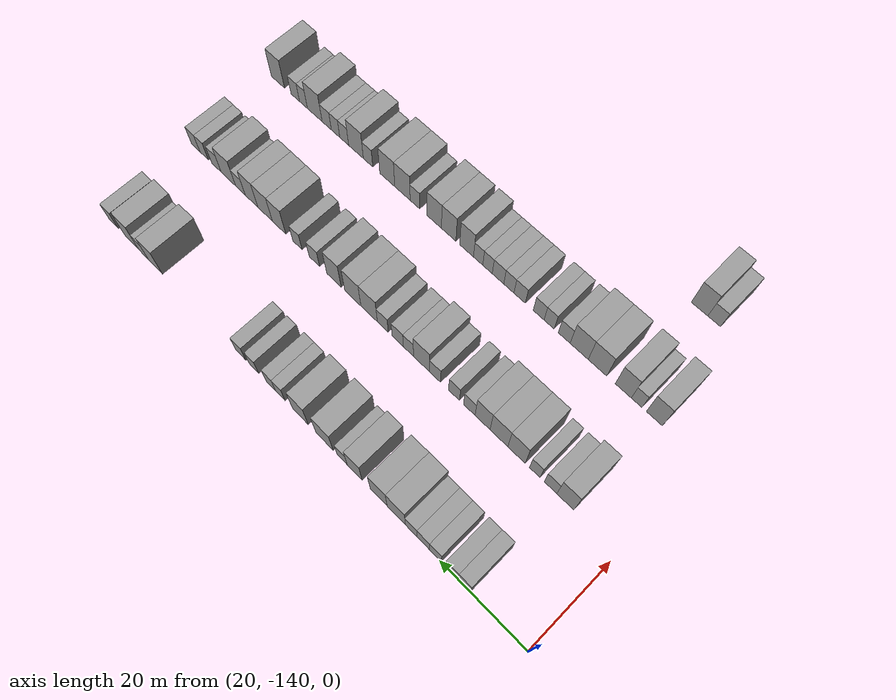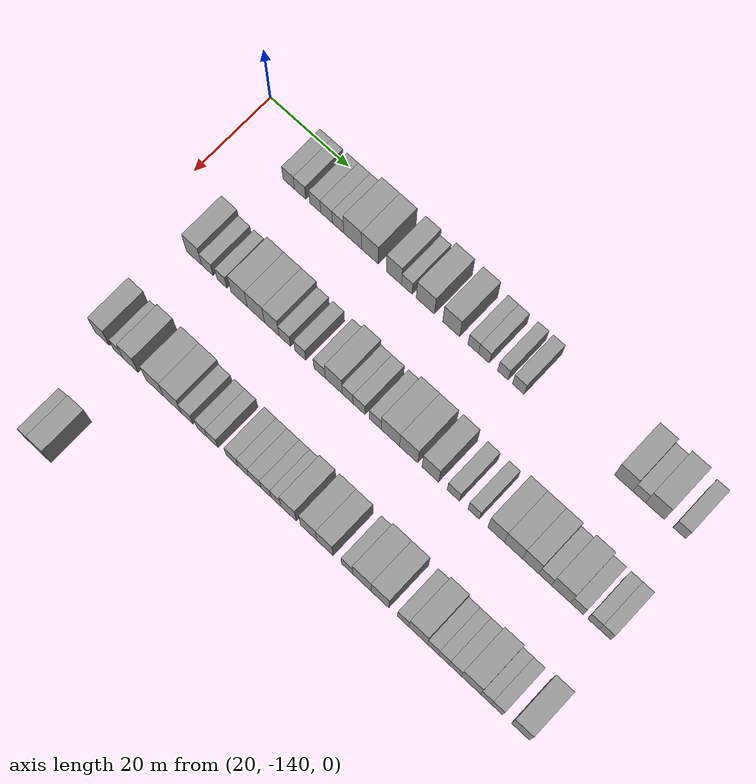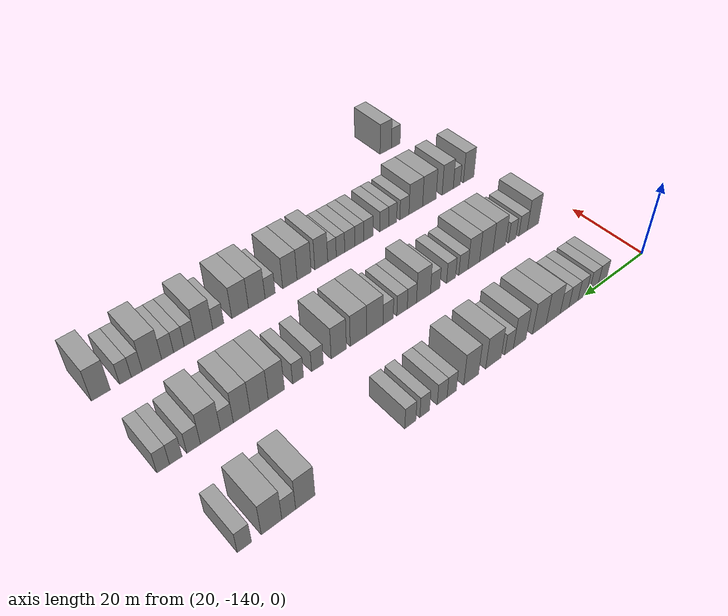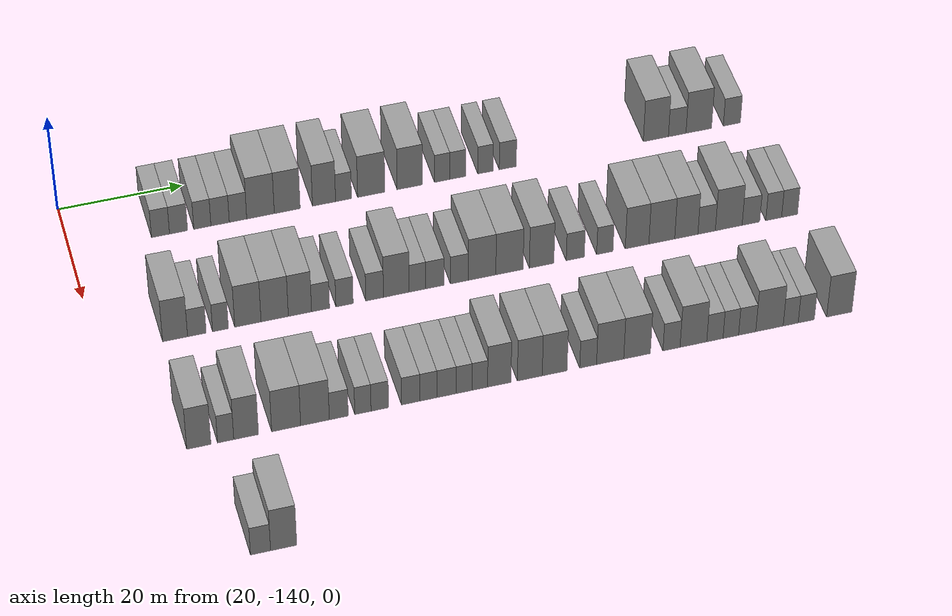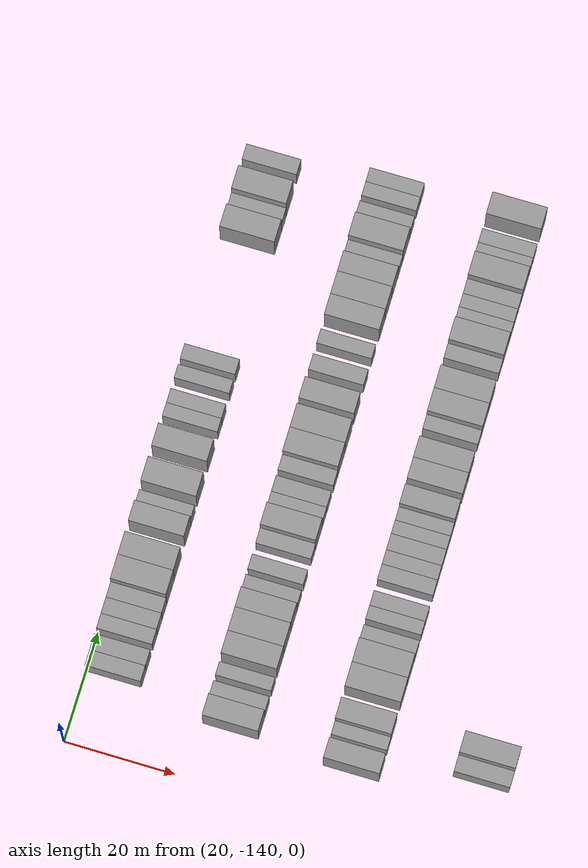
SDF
<sdf version="1.6">
 <world name="default">
  <model name="building_68">
   <static>1</static>
   <pose>25.0000 -125.6321 0 0.000000 0.000000 0.000000</pose>
   <link name="link">
    <pose>0 0 3.00 0 0 0</pose>
    <collision name="collision"><geometry><box><size>10.0000 2.8775 6.0000</size></box></geometry></collision>
    <visual name="visual">
     <cast_shadows>0</cast_shadows>
     <geometry><box><size>10.0000 2.8775 6.0000</size></box></geometry>
     <material>
      <script>
       <uri>model://grey_wall/materials/scripts</uri>
       <uri>model://grey_wall/materials/textures</uri>
       <name>vrc/grey_wall</name>
      </script>
     </material>
    </visual>
   </link>
  </model>
  <model name="building_69">
   <static>1</static>
   <pose>25.0000 -122.7486 0 0.000000 0.000000 0.000000</pose>
   <link name="link">
    <pose>0 0 3.00 0 0 0</pose>
    <collision name="collision"><geometry><box><size>10.0000 2.8895 6.0000</size></box></geometry></collision>
    <visual name="visual">
     <cast_shadows>0</cast_shadows>
     <geometry><box><size>10.0000 2.8895 6.0000</size></box></geometry>
     <material>
      <script>
       <uri>model://grey_wall/materials/scripts</uri>
       <uri>model://grey_wall/materials/textures</uri>
       <name>vrc/grey_wall</name>
      </script>
     </material>
    </visual>
   </link>
  </model>
  <model name="building_70">
   <static>1</static>
   <pose>25.0000 -118.9304 0 0.000000 0.000000 0.000000</pose>
   <link name="link">
    <pose>0 0 3.00 0 0 0</pose>
    <collision name="collision"><geometry><box><size>10.0000 2.7469 6.0000</size></box></geometry></collision>
    <visual name="visual">
     <cast_shadows>0</cast_shadows>
     <geometry><box><size>10.0000 2.7469 6.0000</size></box></geometry>
     <material>
      <script>
       <uri>model://grey_wall/materials/scripts</uri>
       <uri>model://grey_wall/materials/textures</uri>
       <name>vrc/grey_wall</name>
      </script>
     </material>
    </visual>
   </link>
  </model>
  <model name="building_71">
   <static>1</static>
   <pose>25.0000 -116.0844 0 0.000000 0.000000 0.000000</pose>
   <link name="link">
    <pose>0 0 3.00 0 0 0</pose>
    <collision name="collision"><geometry><box><size>10.0000 2.9451 6.0000</size></box></geometry></collision>
    <visual name="visual">
     <cast_shadows>0</cast_shadows>
     <geometry><box><size>10.0000 2.9451 6.0000</size></box></geometry>
     <material>
      <script>
       <uri>model://grey_wall/materials/scripts</uri>
       <uri>model://grey_wall/materials/textures</uri>
       <name>vrc/grey_wall</name>
      </script>
     </material>
    </visual>
   </link>
  </model>
  <model name="building_72">
   <static>1</static>
   <pose>25.0000 -113.2087 0 0.000000 0.000000 0.000000</pose>
   <link name="link">
    <pose>0 0 3.00 0 0 0</pose>
    <collision name="collision"><geometry><box><size>10.0000 2.8061 6.0000</size></box></geometry></collision>
    <visual name="visual">
     <cast_shadows>0</cast_shadows>
     <geometry><box><size>10.0000 2.8061 6.0000</size></box></geometry>
     <material>
      <script>
       <uri>model://grey_wall/materials/scripts</uri>
       <uri>model://grey_wall/materials/textures</uri>
       <name>vrc/grey_wall</name>
      </script>
     </material>
    </visual>
   </link>
  </model>
  <model name="building_73">
   <static>1</static>
   <pose>25.0000 -109.5785 0 0.000000 0.000000 0.000000</pose>
   <link name="link">
    <pose>0 0 4.50 0 0 0</pose>
    <collision name="collision"><geometry><box><size>10.0000 4.4544 9.0000</size></box></geometry></collision>
    <visual name="visual">
     <cast_shadows>0</cast_shadows>
     <geometry><box><size>10.0000 4.4544 9.0000</size></box></geometry>
     <material>
      <script>
       <uri>model://grey_wall/materials/scripts</uri>
       <uri>model://grey_wall/materials/textures</uri>
       <name>vrc/grey_wall</name>
      </script>
     </material>
    </visual>
   </link>
  </model>
  <model name="building_74">
   <static>1</static>
   <pose>25.0000 -105.2569 0 0.000000 0.000000 0.000000</pose>
   <link name="link">
    <pose>0 0 4.50 0 0 0</pose>
    <collision name="collision"><geometry><box><size>10.0000 4.1887 9.0000</size></box></geometry></collision>
    <visual name="visual">
     <cast_shadows>0</cast_shadows>
     <geometry><box><size>10.0000 4.1887 9.0000</size></box></geometry>
     <material>
      <script>
       <uri>model://grey_wall/materials/scripts</uri>
       <uri>model://grey_wall/materials/textures</uri>
       <name>vrc/grey_wall</name>
      </script>
     </material>
    </visual>
   </link>
  </model>
  <model name="building_75">
   <static>1</static>
   <pose>25.0000 -99.2882 0 0.000000 0.000000 0.000000</pose>
   <link name="link">
    <pose>0 0 4.50 0 0 0</pose>
    <collision name="collision"><geometry><box><size>10.0000 3.7487 9.0000</size></box></geometry></collision>
    <visual name="visual">
     <cast_shadows>0</cast_shadows>
     <geometry><box><size>10.0000 3.7487 9.0000</size></box></geometry>
     <material>
      <script>
       <uri>model://grey_wall/materials/scripts</uri>
       <uri>model://grey_wall/materials/textures</uri>
       <name>vrc/grey_wall</name>
      </script>
     </material>
    </visual>
   </link>
  </model>
  <model name="building_76">
   <static>1</static>
   <pose>25.0000 -96.1203 0 0.000000 0.000000 0.000000</pose>
   <link name="link">
    <pose>0 0 3.00 0 0 0</pose>
    <collision name="collision"><geometry><box><size>10.0000 2.5872 6.0000</size></box></geometry></collision>
    <visual name="visual">
     <cast_shadows>0</cast_shadows>
     <geometry><box><size>10.0000 2.5872 6.0000</size></box></geometry>
     <material>
      <script>
       <uri>model://grey_wall/materials/scripts</uri>
       <uri>model://grey_wall/materials/textures</uri>
       <name>vrc/grey_wall</name>
      </script>
     </material>
    </visual>
   </link>
  </model>
  <model name="building_77">
   <static>1</static>
   <pose>25.0000 -91.6001 0 0.000000 0.000000 0.000000</pose>
   <link name="link">
    <pose>0 0 4.50 0 0 0</pose>
    <collision name="collision"><geometry><box><size>10.0000 4.4531 9.0000</size></box></geometry></collision>
    <visual name="visual">
     <cast_shadows>0</cast_shadows>
     <geometry><box><size>10.0000 4.4531 9.0000</size></box></geometry>
     <material>
      <script>
       <uri>model://grey_wall/materials/scripts</uri>
       <uri>model://grey_wall/materials/textures</uri>
       <name>vrc/grey_wall</name>
      </script>
     </material>
    </visual>
   </link>
  </model>
  <model name="building_78">
   <static>1</static>
   <pose>25.0000 -85.3054 0 0.000000 0.000000 0.000000</pose>
   <link name="link">
    <pose>0 0 4.50 0 0 0</pose>
    <collision name="collision"><geometry><box><size>10.0000 4.1364 9.0000</size></box></geometry></collision>
    <visual name="visual">
     <cast_shadows>0</cast_shadows>
     <geometry><box><size>10.0000 4.1364 9.0000</size></box></geometry>
     <material>
      <script>
       <uri>model://grey_wall/materials/scripts</uri>
       <uri>model://grey_wall/materials/textures</uri>
       <name>vrc/grey_wall</name>
      </script>
     </material>
    </visual>
   </link>
  </model>
  <model name="building_79">
   <static>1</static>
   <pose>25.0000 -79.9799 0 0.000000 0.000000 0.000000</pose>
   <link name="link">
    <pose>0 0 3.00 0 0 0</pose>
    <collision name="collision"><geometry><box><size>10.0000 2.5144 6.0000</size></box></geometry></collision>
    <visual name="visual">
     <cast_shadows>0</cast_shadows>
     <geometry><box><size>10.0000 2.5144 6.0000</size></box></geometry>
     <material>
      <script>
       <uri>model://grey_wall/materials/scripts</uri>
       <uri>model://grey_wall/materials/textures</uri>
       <name>vrc/grey_wall</name>
      </script>
     </material>
    </visual>
   </link>
  </model>
  <model name="building_80">
   <static>1</static>
   <pose>25.0000 -77.4095 0 0.000000 0.000000 0.000000</pose>
   <link name="link">
    <pose>0 0 3.00 0 0 0</pose>
    <collision name="collision"><geometry><box><size>10.0000 2.6263 6.0000</size></box></geometry></collision>
    <visual name="visual">
     <cast_shadows>0</cast_shadows>
     <geometry><box><size>10.0000 2.6263 6.0000</size></box></geometry>
     <material>
      <script>
       <uri>model://grey_wall/materials/scripts</uri>
       <uri>model://grey_wall/materials/textures</uri>
       <name>vrc/grey_wall</name>
      </script>
     </material>
    </visual>
   </link>
  </model>
  <model name="building_81">
   <static>1</static>
   <pose>25.0000 -72.8299 0 0.000000 0.000000 0.000000</pose>
   <link name="link">
    <pose>0 0 3.00 0 0 0</pose>
    <collision name="collision"><geometry><box><size>10.0000 2.5330 6.0000</size></box></geometry></collision>
    <visual name="visual">
     <cast_shadows>0</cast_shadows>
     <geometry><box><size>10.0000 2.5330 6.0000</size></box></geometry>
     <material>
      <script>
       <uri>model://grey_wall/materials/scripts</uri>
       <uri>model://grey_wall/materials/textures</uri>
       <name>vrc/grey_wall</name>
      </script>
     </material>
    </visual>
   </link>
  </model>
  <model name="building_82">
   <static>1</static>
   <pose>25.0000 -69.1555 0 0.000000 0.000000 0.000000</pose>
   <link name="link">
    <pose>0 0 3.00 0 0 0</pose>
    <collision name="collision"><geometry><box><size>10.0000 2.8157 6.0000</size></box></geometry></collision>
    <visual name="visual">
     <cast_shadows>0</cast_shadows>
     <geometry><box><size>10.0000 2.8157 6.0000</size></box></geometry>
     <material>
      <script>
       <uri>model://grey_wall/materials/scripts</uri>
       <uri>model://grey_wall/materials/textures</uri>
       <name>vrc/grey_wall</name>
      </script>
     </material>
    </visual>
   </link>
  </model>
  <model name="building_83">
   <static>1</static>
   <pose>25.0000 -44.4096 0 0.000000 0.000000 0.000000</pose>
   <link name="link">
    <pose>0 0 4.50 0 0 0</pose>
    <collision name="collision"><geometry><box><size>10.0000 4.2254 9.0000</size></box></geometry></collision>
    <visual name="visual">
     <cast_shadows>0</cast_shadows>
     <geometry><box><size>10.0000 4.2254 9.0000</size></box></geometry>
     <material>
      <script>
       <uri>model://grey_wall/materials/scripts</uri>
       <uri>model://grey_wall/materials/textures</uri>
       <name>vrc/grey_wall</name>
      </script>
     </material>
    </visual>
   </link>
  </model>
  <model name="building_84">
   <static>1</static>
   <pose>25.0000 -40.8135 0 0.000000 0.000000 0.000000</pose>
   <link name="link">
    <pose>0 0 3.00 0 0 0</pose>
    <collision name="collision"><geometry><box><size>10.0000 2.9668 6.0000</size></box></geometry></collision>
    <visual name="visual">
     <cast_shadows>0</cast_shadows>
     <geometry><box><size>10.0000 2.9668 6.0000</size></box></geometry>
     <material>
      <script>
       <uri>model://grey_wall/materials/scripts</uri>
       <uri>model://grey_wall/materials/textures</uri>
       <name>vrc/grey_wall</name>
      </script>
     </material>
    </visual>
   </link>
  </model>
  <model name="building_85">
   <static>1</static>
   <pose>25.0000 -37.1729 0 0.000000 0.000000 0.000000</pose>
   <link name="link">
    <pose>0 0 4.50 0 0 0</pose>
    <collision name="collision"><geometry><box><size>10.0000 4.3143 9.0000</size></box></geometry></collision>
    <visual name="visual">
     <cast_shadows>0</cast_shadows>
     <geometry><box><size>10.0000 4.3143 9.0000</size></box></geometry>
     <material>
      <script>
       <uri>model://grey_wall/materials/scripts</uri>
       <uri>model://grey_wall/materials/textures</uri>
       <name>vrc/grey_wall</name>
      </script>
     </material>
    </visual>
   </link>
  </model>
  <model name="building_86">
   <static>1</static>
   <pose>25.0000 -31.5708 0 0.000000 0.000000 0.000000</pose>
   <link name="link">
    <pose>0 0 3.00 0 0 0</pose>
    <collision name="collision"><geometry><box><size>10.0000 2.8900 6.0000</size></box></geometry></collision>
    <visual name="visual">
     <cast_shadows>0</cast_shadows>
     <geometry><box><size>10.0000 2.8900 6.0000</size></box></geometry>
     <material>
      <script>
       <uri>model://grey_wall/materials/scripts</uri>
       <uri>model://grey_wall/materials/textures</uri>
       <name>vrc/grey_wall</name>
      </script>
     </material>
    </visual>
   </link>
  </model>
  <model name="building_234">
   <static>1</static>
   <pose>47.0000 -128.1214 0 0.000000 0.000000 0.000000</pose>
   <link name="link">
    <pose>0 0 4.50 0 0 0</pose>
    <collision name="collision"><geometry><box><size>10.0000 3.8833 9.0000</size></box></geometry></collision>
    <visual name="visual">
     <cast_shadows>0</cast_shadows>
     <geometry><box><size>10.0000 3.8833 9.0000</size></box></geometry>
     <material>
      <script>
       <uri>model://grey_wall/materials/scripts</uri>
       <uri>model://grey_wall/materials/textures</uri>
       <name>vrc/grey_wall</name>
      </script>
     </material>
    </visual>
   </link>
  </model>
  <model name="building_235">
   <static>1</static>
   <pose>47.0000 -124.7297 0 0.000000 0.000000 0.000000</pose>
   <link name="link">
    <pose>0 0 3.00 0 0 0</pose>
    <collision name="collision"><geometry><box><size>10.0000 2.9000 6.0000</size></box></geometry></collision>
    <visual name="visual">
     <cast_shadows>0</cast_shadows>
     <geometry><box><size>10.0000 2.9000 6.0000</size></box></geometry>
     <material>
      <script>
       <uri>model://grey_wall/materials/scripts</uri>
       <uri>model://grey_wall/materials/textures</uri>
       <name>vrc/grey_wall</name>
      </script>
     </material>
    </visual>
   </link>
  </model>
  <model name="building_236">
   <static>1</static>
   <pose>47.0000 -121.0456 0 0.000000 0.000000 0.000000</pose>
   <link name="link">
    <pose>0 0 3.00 0 0 0</pose>
    <collision name="collision"><geometry><box><size>10.0000 2.4681 6.0000</size></box></geometry></collision>
    <visual name="visual">
     <cast_shadows>0</cast_shadows>
     <geometry><box><size>10.0000 2.4681 6.0000</size></box></geometry>
     <material>
      <script>
       <uri>model://grey_wall/materials/scripts</uri>
       <uri>model://grey_wall/materials/textures</uri>
       <name>vrc/grey_wall</name>
      </script>
     </material>
    </visual>
   </link>
  </model>
  <model name="building_237">
   <static>1</static>
   <pose>47.0000 -116.7533 0 0.000000 0.000000 0.000000</pose>
   <link name="link">
    <pose>0 0 4.50 0 0 0</pose>
    <collision name="collision"><geometry><box><size>10.0000 4.1167 9.0000</size></box></geometry></collision>
    <visual name="visual">
     <cast_shadows>0</cast_shadows>
     <geometry><box><size>10.0000 4.1167 9.0000</size></box></geometry>
     <material>
      <script>
       <uri>model://grey_wall/materials/scripts</uri>
       <uri>model://grey_wall/materials/textures</uri>
       <name>vrc/grey_wall</name>
      </script>
     </material>
    </visual>
   </link>
  </model>
  <model name="building_238">
   <static>1</static>
   <pose>47.0000 -112.5541 0 0.000000 0.000000 0.000000</pose>
   <link name="link">
    <pose>0 0 4.50 0 0 0</pose>
    <collision name="collision"><geometry><box><size>10.0000 4.2816 9.0000</size></box></geometry></collision>
    <visual name="visual">
     <cast_shadows>0</cast_shadows>
     <geometry><box><size>10.0000 4.2816 9.0000</size></box></geometry>
     <material>
      <script>
       <uri>model://grey_wall/materials/scripts</uri>
       <uri>model://grey_wall/materials/textures</uri>
       <name>vrc/grey_wall</name>
      </script>
     </material>
    </visual>
   </link>
  </model>
  <model name="building_239">
   <static>1</static>
   <pose>47.0000 -108.5818 0 0.000000 0.000000 0.000000</pose>
   <link name="link">
    <pose>0 0 4.50 0 0 0</pose>
    <collision name="collision"><geometry><box><size>10.0000 3.6629 9.0000</size></box></geometry></collision>
    <visual name="visual">
     <cast_shadows>0</cast_shadows>
     <geometry><box><size>10.0000 3.6629 9.0000</size></box></geometry>
     <material>
      <script>
       <uri>model://grey_wall/materials/scripts</uri>
       <uri>model://grey_wall/materials/textures</uri>
       <name>vrc/grey_wall</name>
      </script>
     </material>
    </visual>
   </link>
  </model>
  <model name="building_240">
   <static>1</static>
   <pose>47.0000 -105.3297 0 0.000000 0.000000 0.000000</pose>
   <link name="link">
    <pose>0 0 3.00 0 0 0</pose>
    <collision name="collision"><geometry><box><size>10.0000 2.8414 6.0000</size></box></geometry></collision>
    <visual name="visual">
     <cast_shadows>0</cast_shadows>
     <geometry><box><size>10.0000 2.8414 6.0000</size></box></geometry>
     <material>
      <script>
       <uri>model://grey_wall/materials/scripts</uri>
       <uri>model://grey_wall/materials/textures</uri>
       <name>vrc/grey_wall</name>
      </script>
     </material>
    </visual>
   </link>
  </model>
  <model name="building_241">
   <static>1</static>
   <pose>47.0000 -101.5407 0 0.000000 0.000000 0.000000</pose>
   <link name="link">
    <pose>0 0 3.00 0 0 0</pose>
    <collision name="collision"><geometry><box><size>10.0000 2.7366 6.0000</size></box></geometry></collision>
    <visual name="visual">
     <cast_shadows>0</cast_shadows>
     <geometry><box><size>10.0000 2.7366 6.0000</size></box></geometry>
     <material>
      <script>
       <uri>model://grey_wall/materials/scripts</uri>
       <uri>model://grey_wall/materials/textures</uri>
       <name>vrc/grey_wall</name>
      </script>
     </material>
    </visual>
   </link>
  </model>
  <model name="building_242">
   <static>1</static>
   <pose>47.0000 -96.7659 0 0.000000 0.000000 0.000000</pose>
   <link name="link">
    <pose>0 0 3.00 0 0 0</pose>
    <collision name="collision"><geometry><box><size>10.0000 2.8129 6.0000</size></box></geometry></collision>
    <visual name="visual">
     <cast_shadows>0</cast_shadows>
     <geometry><box><size>10.0000 2.8129 6.0000</size></box></geometry>
     <material>
      <script>
       <uri>model://grey_wall/materials/scripts</uri>
       <uri>model://grey_wall/materials/textures</uri>
       <name>vrc/grey_wall</name>
      </script>
     </material>
    </visual>
   </link>
  </model>
  <model name="building_243">
   <static>1</static>
   <pose>47.0000 -93.3138 0 0.000000 0.000000 0.000000</pose>
   <link name="link">
    <pose>0 0 4.50 0 0 0</pose>
    <collision name="collision"><geometry><box><size>10.0000 4.0915 9.0000</size></box></geometry></collision>
    <visual name="visual">
     <cast_shadows>0</cast_shadows>
     <geometry><box><size>10.0000 4.0915 9.0000</size></box></geometry>
     <material>
      <script>
       <uri>model://grey_wall/materials/scripts</uri>
       <uri>model://grey_wall/materials/textures</uri>
       <name>vrc/grey_wall</name>
      </script>
     </material>
    </visual>
   </link>
  </model>
  <model name="building_244">
   <static>1</static>
   <pose>47.0000 -89.9505 0 0.000000 0.000000 0.000000</pose>
   <link name="link">
    <pose>0 0 3.00 0 0 0</pose>
    <collision name="collision"><geometry><box><size>10.0000 2.6350 6.0000</size></box></geometry></collision>
    <visual name="visual">
     <cast_shadows>0</cast_shadows>
     <geometry><box><size>10.0000 2.6350 6.0000</size></box></geometry>
     <material>
      <script>
       <uri>model://grey_wall/materials/scripts</uri>
       <uri>model://grey_wall/materials/textures</uri>
       <name>vrc/grey_wall</name>
      </script>
     </material>
    </visual>
   </link>
  </model>
  <model name="building_245">
   <static>1</static>
   <pose>47.0000 -87.1586 0 0.000000 0.000000 0.000000</pose>
   <link name="link">
    <pose>0 0 3.00 0 0 0</pose>
    <collision name="collision"><geometry><box><size>10.0000 2.9489 6.0000</size></box></geometry></collision>
    <visual name="visual">
     <cast_shadows>0</cast_shadows>
     <geometry><box><size>10.0000 2.9489 6.0000</size></box></geometry>
     <material>
      <script>
       <uri>model://grey_wall/materials/scripts</uri>
       <uri>model://grey_wall/materials/textures</uri>
       <name>vrc/grey_wall</name>
      </script>
     </material>
    </visual>
   </link>
  </model>
  <model name="building_246">
   <static>1</static>
   <pose>47.0000 -83.2494 0 0.000000 0.000000 0.000000</pose>
   <link name="link">
    <pose>0 0 3.00 0 0 0</pose>
    <collision name="collision"><geometry><box><size>10.0000 2.8693 6.0000</size></box></geometry></collision>
    <visual name="visual">
     <cast_shadows>0</cast_shadows>
     <geometry><box><size>10.0000 2.8693 6.0000</size></box></geometry>
     <material>
      <script>
       <uri>model://grey_wall/materials/scripts</uri>
       <uri>model://grey_wall/materials/textures</uri>
       <name>vrc/grey_wall</name>
      </script>
     </material>
    </visual>
   </link>
  </model>
  <model name="building_247">
   <static>1</static>
   <pose>47.0000 -79.6062 0 0.000000 0.000000 0.000000</pose>
   <link name="link">
    <pose>0 0 4.50 0 0 0</pose>
    <collision name="collision"><geometry><box><size>10.0000 4.4171 9.0000</size></box></geometry></collision>
    <visual name="visual">
     <cast_shadows>0</cast_shadows>
     <geometry><box><size>10.0000 4.4171 9.0000</size></box></geometry>
     <material>
      <script>
       <uri>model://grey_wall/materials/scripts</uri>
       <uri>model://grey_wall/materials/textures</uri>
       <name>vrc/grey_wall</name>
      </script>
     </material>
    </visual>
   </link>
  </model>
  <model name="building_248">
   <static>1</static>
   <pose>47.0000 -75.2029 0 0.000000 0.000000 0.000000</pose>
   <link name="link">
    <pose>0 0 4.50 0 0 0</pose>
    <collision name="collision"><geometry><box><size>10.0000 4.3895 9.0000</size></box></geometry></collision>
    <visual name="visual">
     <cast_shadows>0</cast_shadows>
     <geometry><box><size>10.0000 4.3895 9.0000</size></box></geometry>
     <material>
      <script>
       <uri>model://grey_wall/materials/scripts</uri>
       <uri>model://grey_wall/materials/textures</uri>
       <name>vrc/grey_wall</name>
      </script>
     </material>
    </visual>
   </link>
  </model>
  <model name="building_249">
   <static>1</static>
   <pose>47.0000 -70.0247 0 0.000000 0.000000 0.000000</pose>
   <link name="link">
    <pose>0 0 4.50 0 0 0</pose>
    <collision name="collision"><geometry><box><size>10.0000 3.9669 9.0000</size></box></geometry></collision>
    <visual name="visual">
     <cast_shadows>0</cast_shadows>
     <geometry><box><size>10.0000 3.9669 9.0000</size></box></geometry>
     <material>
      <script>
       <uri>model://grey_wall/materials/scripts</uri>
       <uri>model://grey_wall/materials/textures</uri>
       <name>vrc/grey_wall</name>
      </script>
     </material>
    </visual>
   </link>
  </model>
  <model name="building_250">
   <static>1</static>
   <pose>47.0000 -64.5692 0 0.000000 0.000000 0.000000</pose>
   <link name="link">
    <pose>0 0 3.00 0 0 0</pose>
    <collision name="collision"><geometry><box><size>10.0000 2.9443 6.0000</size></box></geometry></collision>
    <visual name="visual">
     <cast_shadows>0</cast_shadows>
     <geometry><box><size>10.0000 2.9443 6.0000</size></box></geometry>
     <material>
      <script>
       <uri>model://grey_wall/materials/scripts</uri>
       <uri>model://grey_wall/materials/textures</uri>
       <name>vrc/grey_wall</name>
      </script>
     </material>
    </visual>
   </link>
  </model>
  <model name="building_251">
   <static>1</static>
   <pose>47.0000 -59.7716 0 0.000000 0.000000 0.000000</pose>
   <link name="link">
    <pose>0 0 3.00 0 0 0</pose>
    <collision name="collision"><geometry><box><size>10.0000 2.6509 6.0000</size></box></geometry></collision>
    <visual name="visual">
     <cast_shadows>0</cast_shadows>
     <geometry><box><size>10.0000 2.6509 6.0000</size></box></geometry>
     <material>
      <script>
       <uri>model://grey_wall/materials/scripts</uri>
       <uri>model://grey_wall/materials/textures</uri>
       <name>vrc/grey_wall</name>
      </script>
     </material>
    </visual>
   </link>
  </model>
  <model name="building_252">
   <static>1</static>
   <pose>47.0000 -54.5122 0 0.000000 0.000000 0.000000</pose>
   <link name="link">
    <pose>0 0 4.50 0 0 0</pose>
    <collision name="collision"><geometry><box><size>10.0000 3.8678 9.0000</size></box></geometry></collision>
    <visual name="visual">
     <cast_shadows>0</cast_shadows>
     <geometry><box><size>10.0000 3.8678 9.0000</size></box></geometry>
     <material>
      <script>
       <uri>model://grey_wall/materials/scripts</uri>
       <uri>model://grey_wall/materials/textures</uri>
       <name>vrc/grey_wall</name>
      </script>
     </material>
    </visual>
   </link>
  </model>
  <model name="building_253">
   <static>1</static>
   <pose>47.0000 -50.4630 0 0.000000 0.000000 0.000000</pose>
   <link name="link">
    <pose>0 0 4.50 0 0 0</pose>
    <collision name="collision"><geometry><box><size>10.0000 4.2305 9.0000</size></box></geometry></collision>
    <visual name="visual">
     <cast_shadows>0</cast_shadows>
     <geometry><box><size>10.0000 4.2305 9.0000</size></box></geometry>
     <material>
      <script>
       <uri>model://grey_wall/materials/scripts</uri>
       <uri>model://grey_wall/materials/textures</uri>
       <name>vrc/grey_wall</name>
      </script>
     </material>
    </visual>
   </link>
  </model>
  <model name="building_254">
   <static>1</static>
   <pose>47.0000 -46.4441 0 0.000000 0.000000 0.000000</pose>
   <link name="link">
    <pose>0 0 4.50 0 0 0</pose>
    <collision name="collision"><geometry><box><size>10.0000 3.8074 9.0000</size></box></geometry></collision>
    <visual name="visual">
     <cast_shadows>0</cast_shadows>
     <geometry><box><size>10.0000 3.8074 9.0000</size></box></geometry>
     <material>
      <script>
       <uri>model://grey_wall/materials/scripts</uri>
       <uri>model://grey_wall/materials/textures</uri>
       <name>vrc/grey_wall</name>
      </script>
     </material>
    </visual>
   </link>
  </model>
  <model name="building_255">
   <static>1</static>
   <pose>47.0000 -43.1055 0 0.000000 0.000000 0.000000</pose>
   <link name="link">
    <pose>0 0 3.00 0 0 0</pose>
    <collision name="collision"><geometry><box><size>10.0000 2.8697 6.0000</size></box></geometry></collision>
    <visual name="visual">
     <cast_shadows>0</cast_shadows>
     <geometry><box><size>10.0000 2.8697 6.0000</size></box></geometry>
     <material>
      <script>
       <uri>model://grey_wall/materials/scripts</uri>
       <uri>model://grey_wall/materials/textures</uri>
       <name>vrc/grey_wall</name>
      </script>
     </material>
    </visual>
   </link>
  </model>
  <model name="building_256">
   <static>1</static>
   <pose>47.0000 -39.4622 0 0.000000 0.000000 0.000000</pose>
   <link name="link">
    <pose>0 0 4.50 0 0 0</pose>
    <collision name="collision"><geometry><box><size>10.0000 4.4170 9.0000</size></box></geometry></collision>
    <visual name="visual">
     <cast_shadows>0</cast_shadows>
     <geometry><box><size>10.0000 4.4170 9.0000</size></box></geometry>
     <material>
      <script>
       <uri>model://grey_wall/materials/scripts</uri>
       <uri>model://grey_wall/materials/textures</uri>
       <name>vrc/grey_wall</name>
      </script>
     </material>
    </visual>
   </link>
  </model>
  <model name="building_257">
   <static>1</static>
   <pose>47.0000 -35.7966 0 0.000000 0.000000 0.000000</pose>
   <link name="link">
    <pose>0 0 3.00 0 0 0</pose>
    <collision name="collision"><geometry><box><size>10.0000 2.9141 6.0000</size></box></geometry></collision>
    <visual name="visual">
     <cast_shadows>0</cast_shadows>
     <geometry><box><size>10.0000 2.9141 6.0000</size></box></geometry>
     <material>
      <script>
       <uri>model://grey_wall/materials/scripts</uri>
       <uri>model://grey_wall/materials/textures</uri>
       <name>vrc/grey_wall</name>
      </script>
     </material>
    </visual>
   </link>
  </model>
  <model name="building_258">
   <static>1</static>
   <pose>47.0000 -32.0243 0 0.000000 0.000000 0.000000</pose>
   <link name="link">
    <pose>0 0 3.00 0 0 0</pose>
    <collision name="collision"><geometry><box><size>10.0000 2.6305 6.0000</size></box></geometry></collision>
    <visual name="visual">
     <cast_shadows>0</cast_shadows>
     <geometry><box><size>10.0000 2.6305 6.0000</size></box></geometry>
     <material>
      <script>
       <uri>model://grey_wall/materials/scripts</uri>
       <uri>model://grey_wall/materials/textures</uri>
       <name>vrc/grey_wall</name>
      </script>
     </material>
    </visual>
   </link>
  </model>
  <model name="building_259">
   <static>1</static>
   <pose>47.0000 -29.3949 0 0.000000 0.000000 0.000000</pose>
   <link name="link">
    <pose>0 0 3.00 0 0 0</pose>
    <collision name="collision"><geometry><box><size>10.0000 2.6283 6.0000</size></box></geometry></collision>
    <visual name="visual">
     <cast_shadows>0</cast_shadows>
     <geometry><box><size>10.0000 2.6283 6.0000</size></box></geometry>
     <material>
      <script>
       <uri>model://grey_wall/materials/scripts</uri>
       <uri>model://grey_wall/materials/textures</uri>
       <name>vrc/grey_wall</name>
      </script>
     </material>
    </visual>
   </link>
  </model>
  <model name="building_425">
   <static>1</static>
   <pose>69.0000 -129.3531 0 0.000000 0.000000 0.000000</pose>
   <link name="link">
    <pose>0 0 4.50 0 0 0</pose>
    <collision name="collision"><geometry><box><size>10.0000 3.6675 9.0000</size></box></geometry></collision>
    <visual name="visual">
     <cast_shadows>0</cast_shadows>
     <geometry><box><size>10.0000 3.6675 9.0000</size></box></geometry>
     <material>
      <script>
       <uri>model://grey_wall/materials/scripts</uri>
       <uri>model://grey_wall/materials/textures</uri>
       <name>vrc/grey_wall</name>
      </script>
     </material>
    </visual>
   </link>
  </model>
  <model name="building_426">
   <static>1</static>
   <pose>69.0000 -125.2869 0 0.000000 0.000000 0.000000</pose>
   <link name="link">
    <pose>0 0 3.00 0 0 0</pose>
    <collision name="collision"><geometry><box><size>10.0000 2.4648 6.0000</size></box></geometry></collision>
    <visual name="visual">
     <cast_shadows>0</cast_shadows>
     <geometry><box><size>10.0000 2.4648 6.0000</size></box></geometry>
     <material>
      <script>
       <uri>model://grey_wall/materials/scripts</uri>
       <uri>model://grey_wall/materials/textures</uri>
       <name>vrc/grey_wall</name>
      </script>
     </material>
    </visual>
   </link>
  </model>
  <model name="building_427">
   <static>1</static>
   <pose>69.0000 -122.1708 0 0.000000 0.000000 0.000000</pose>
   <link name="link">
    <pose>0 0 4.50 0 0 0</pose>
    <collision name="collision"><geometry><box><size>10.0000 3.7676 9.0000</size></box></geometry></collision>
    <visual name="visual">
     <cast_shadows>0</cast_shadows>
     <geometry><box><size>10.0000 3.7676 9.0000</size></box></geometry>
     <material>
      <script>
       <uri>model://grey_wall/materials/scripts</uri>
       <uri>model://grey_wall/materials/textures</uri>
       <name>vrc/grey_wall</name>
      </script>
     </material>
    </visual>
   </link>
  </model>
  <model name="building_428">
   <static>1</static>
   <pose>69.0000 -116.0687 0 0.000000 0.000000 0.000000</pose>
   <link name="link">
    <pose>0 0 4.50 0 0 0</pose>
    <collision name="collision"><geometry><box><size>10.0000 4.4365 9.0000</size></box></geometry></collision>
    <visual name="visual">
     <cast_shadows>0</cast_shadows>
     <geometry><box><size>10.0000 4.4365 9.0000</size></box></geometry>
     <material>
      <script>
       <uri>model://grey_wall/materials/scripts</uri>
       <uri>model://grey_wall/materials/textures</uri>
       <name>vrc/grey_wall</name>
      </script>
     </material>
    </visual>
   </link>
  </model>
  <model name="building_429">
   <static>1</static>
   <pose>69.0000 -111.6551 0 0.000000 0.000000 0.000000</pose>
   <link name="link">
    <pose>0 0 4.50 0 0 0</pose>
    <collision name="collision"><geometry><box><size>10.0000 4.3907 9.0000</size></box></geometry></collision>
    <visual name="visual">
     <cast_shadows>0</cast_shadows>
     <geometry><box><size>10.0000 4.3907 9.0000</size></box></geometry>
     <material>
      <script>
       <uri>model://grey_wall/materials/scripts</uri>
       <uri>model://grey_wall/materials/textures</uri>
       <name>vrc/grey_wall</name>
      </script>
     </material>
    </visual>
   </link>
  </model>
  <model name="building_430">
   <static>1</static>
   <pose>69.0000 -108.0057 0 0.000000 0.000000 0.000000</pose>
   <link name="link">
    <pose>0 0 3.00 0 0 0</pose>
    <collision name="collision"><geometry><box><size>10.0000 2.9081 6.0000</size></box></geometry></collision>
    <visual name="visual">
     <cast_shadows>0</cast_shadows>
     <geometry><box><size>10.0000 2.9081 6.0000</size></box></geometry>
     <material>
      <script>
       <uri>model://grey_wall/materials/scripts</uri>
       <uri>model://grey_wall/materials/textures</uri>
       <name>vrc/grey_wall</name>
      </script>
     </material>
    </visual>
   </link>
  </model>
  <model name="building_431">
   <static>1</static>
   <pose>69.0000 -104.2964 0 0.000000 0.000000 0.000000</pose>
   <link name="link">
    <pose>0 0 3.00 0 0 0</pose>
    <collision name="collision"><geometry><box><size>10.0000 2.5105 6.0000</size></box></geometry></collision>
    <visual name="visual">
     <cast_shadows>0</cast_shadows>
     <geometry><box><size>10.0000 2.5105 6.0000</size></box></geometry>
     <material>
      <script>
       <uri>model://grey_wall/materials/scripts</uri>
       <uri>model://grey_wall/materials/textures</uri>
       <name>vrc/grey_wall</name>
      </script>
     </material>
    </visual>
   </link>
  </model>
  <model name="building_432">
   <static>1</static>
   <pose>69.0000 -101.6892 0 0.000000 0.000000 0.000000</pose>
   <link name="link">
    <pose>0 0 3.00 0 0 0</pose>
    <collision name="collision"><geometry><box><size>10.0000 2.7039 6.0000</size></box></geometry></collision>
    <visual name="visual">
     <cast_shadows>0</cast_shadows>
     <geometry><box><size>10.0000 2.7039 6.0000</size></box></geometry>
     <material>
      <script>
       <uri>model://grey_wall/materials/scripts</uri>
       <uri>model://grey_wall/materials/textures</uri>
       <name>vrc/grey_wall</name>
      </script>
     </material>
    </visual>
   </link>
  </model>
  <model name="building_433">
   <static>1</static>
   <pose>69.0000 -96.9033 0 0.000000 0.000000 0.000000</pose>
   <link name="link">
    <pose>0 0 3.00 0 0 0</pose>
    <collision name="collision"><geometry><box><size>10.0000 2.8678 6.0000</size></box></geometry></collision>
    <visual name="visual">
     <cast_shadows>0</cast_shadows>
     <geometry><box><size>10.0000 2.8678 6.0000</size></box></geometry>
     <material>
      <script>
       <uri>model://grey_wall/materials/scripts</uri>
       <uri>model://grey_wall/materials/textures</uri>
       <name>vrc/grey_wall</name>
      </script>
     </material>
    </visual>
   </link>
  </model>
  <model name="building_434">
   <static>1</static>
   <pose>69.0000 -94.1615 0 0.000000 0.000000 0.000000</pose>
   <link name="link">
    <pose>0 0 3.00 0 0 0</pose>
    <collision name="collision"><geometry><box><size>10.0000 2.6158 6.0000</size></box></geometry></collision>
    <visual name="visual">
     <cast_shadows>0</cast_shadows>
     <geometry><box><size>10.0000 2.6158 6.0000</size></box></geometry>
     <material>
      <script>
       <uri>model://grey_wall/materials/scripts</uri>
       <uri>model://grey_wall/materials/textures</uri>
       <name>vrc/grey_wall</name>
      </script>
     </material>
    </visual>
   </link>
  </model>
  <model name="building_435">
   <static>1</static>
   <pose>69.0000 -91.3620 0 0.000000 0.000000 0.000000</pose>
   <link name="link">
    <pose>0 0 3.00 0 0 0</pose>
    <collision name="collision"><geometry><box><size>10.0000 2.9832 6.0000</size></box></geometry></collision>
    <visual name="visual">
     <cast_shadows>0</cast_shadows>
     <geometry><box><size>10.0000 2.9832 6.0000</size></box></geometry>
     <material>
      <script>
       <uri>model://grey_wall/materials/scripts</uri>
       <uri>model://grey_wall/materials/textures</uri>
       <name>vrc/grey_wall</name>
      </script>
     </material>
    </visual>
   </link>
  </model>
  <model name="building_436">
   <static>1</static>
   <pose>69.0000 -88.6391 0 0.000000 0.000000 0.000000</pose>
   <link name="link">
    <pose>0 0 3.00 0 0 0</pose>
    <collision name="collision"><geometry><box><size>10.0000 2.4626 6.0000</size></box></geometry></collision>
    <visual name="visual">
     <cast_shadows>0</cast_shadows>
     <geometry><box><size>10.0000 2.4626 6.0000</size></box></geometry>
     <material>
      <script>
       <uri>model://grey_wall/materials/scripts</uri>
       <uri>model://grey_wall/materials/textures</uri>
       <name>vrc/grey_wall</name>
      </script>
     </material>
    </visual>
   </link>
  </model>
  <model name="building_437">
   <static>1</static>
   <pose>69.0000 -86.1884 0 0.000000 0.000000 0.000000</pose>
   <link name="link">
    <pose>0 0 3.00 0 0 0</pose>
    <collision name="collision"><geometry><box><size>10.0000 2.4389 6.0000</size></box></geometry></collision>
    <visual name="visual">
     <cast_shadows>0</cast_shadows>
     <geometry><box><size>10.0000 2.4389 6.0000</size></box></geometry>
     <material>
      <script>
       <uri>model://grey_wall/materials/scripts</uri>
       <uri>model://grey_wall/materials/textures</uri>
       <name>vrc/grey_wall</name>
      </script>
     </material>
    </visual>
   </link>
  </model>
  <model name="building_438">
   <static>1</static>
   <pose>69.0000 -83.1420 0 0.000000 0.000000 0.000000</pose>
   <link name="link">
    <pose>0 0 4.50 0 0 0</pose>
    <collision name="collision"><geometry><box><size>10.0000 3.6538 9.0000</size></box></geometry></collision>
    <visual name="visual">
     <cast_shadows>0</cast_shadows>
     <geometry><box><size>10.0000 3.6538 9.0000</size></box></geometry>
     <material>
      <script>
       <uri>model://grey_wall/materials/scripts</uri>
       <uri>model://grey_wall/materials/textures</uri>
       <name>vrc/grey_wall</name>
      </script>
     </material>
    </visual>
   </link>
  </model>
  <model name="building_439">
   <static>1</static>
   <pose>69.0000 -78.3642 0 0.000000 0.000000 0.000000</pose>
   <link name="link">
    <pose>0 0 4.50 0 0 0</pose>
    <collision name="collision"><geometry><box><size>10.0000 3.9019 9.0000</size></box></geometry></collision>
    <visual name="visual">
     <cast_shadows>0</cast_shadows>
     <geometry><box><size>10.0000 3.9019 9.0000</size></box></geometry>
     <material>
      <script>
       <uri>model://grey_wall/materials/scripts</uri>
       <uri>model://grey_wall/materials/textures</uri>
       <name>vrc/grey_wall</name>
      </script>
     </material>
    </visual>
   </link>
  </model>
  <model name="building_440">
   <static>1</static>
   <pose>69.0000 -74.4642 0 0.000000 0.000000 0.000000</pose>
   <link name="link">
    <pose>0 0 4.50 0 0 0</pose>
    <collision name="collision"><geometry><box><size>10.0000 3.8980 9.0000</size></box></geometry></collision>
    <visual name="visual">
     <cast_shadows>0</cast_shadows>
     <geometry><box><size>10.0000 3.8980 9.0000</size></box></geometry>
     <material>
      <script>
       <uri>model://grey_wall/materials/scripts</uri>
       <uri>model://grey_wall/materials/textures</uri>
       <name>vrc/grey_wall</name>
      </script>
     </material>
    </visual>
   </link>
  </model>
  <model name="building_441">
   <static>1</static>
   <pose>69.0000 -69.1876 0 0.000000 0.000000 0.000000</pose>
   <link name="link">
    <pose>0 0 3.00 0 0 0</pose>
    <collision name="collision"><geometry><box><size>10.0000 2.6553 6.0000</size></box></geometry></collision>
    <visual name="visual">
     <cast_shadows>0</cast_shadows>
     <geometry><box><size>10.0000 2.6553 6.0000</size></box></geometry>
     <material>
      <script>
       <uri>model://grey_wall/materials/scripts</uri>
       <uri>model://grey_wall/materials/textures</uri>
       <name>vrc/grey_wall</name>
      </script>
     </material>
    </visual>
   </link>
  </model>
  <model name="building_442">
   <static>1</static>
   <pose>69.0000 -65.7091 0 0.000000 0.000000 0.000000</pose>
   <link name="link">
    <pose>0 0 4.50 0 0 0</pose>
    <collision name="collision"><geometry><box><size>10.0000 4.3017 9.0000</size></box></geometry></collision>
    <visual name="visual">
     <cast_shadows>0</cast_shadows>
     <geometry><box><size>10.0000 4.3017 9.0000</size></box></geometry>
     <material>
      <script>
       <uri>model://grey_wall/materials/scripts</uri>
       <uri>model://grey_wall/materials/textures</uri>
       <name>vrc/grey_wall</name>
      </script>
     </material>
    </visual>
   </link>
  </model>
  <model name="building_443">
   <static>1</static>
   <pose>69.0000 -61.4460 0 0.000000 0.000000 0.000000</pose>
   <link name="link">
    <pose>0 0 4.50 0 0 0</pose>
    <collision name="collision"><geometry><box><size>10.0000 4.2245 9.0000</size></box></geometry></collision>
    <visual name="visual">
     <cast_shadows>0</cast_shadows>
     <geometry><box><size>10.0000 4.2245 9.0000</size></box></geometry>
     <material>
      <script>
       <uri>model://grey_wall/materials/scripts</uri>
       <uri>model://grey_wall/materials/textures</uri>
       <name>vrc/grey_wall</name>
      </script>
     </material>
    </visual>
   </link>
  </model>
  <model name="building_444">
   <static>1</static>
   <pose>69.0000 -55.9717 0 0.000000 0.000000 0.000000</pose>
   <link name="link">
    <pose>0 0 3.00 0 0 0</pose>
    <collision name="collision"><geometry><box><size>10.0000 2.7242 6.0000</size></box></geometry></collision>
    <visual name="visual">
     <cast_shadows>0</cast_shadows>
     <geometry><box><size>10.0000 2.7242 6.0000</size></box></geometry>
     <material>
      <script>
       <uri>model://grey_wall/materials/scripts</uri>
       <uri>model://grey_wall/materials/textures</uri>
       <name>vrc/grey_wall</name>
      </script>
     </material>
    </visual>
   </link>
  </model>
  <model name="building_445">
   <static>1</static>
   <pose>69.0000 -52.4782 0 0.000000 0.000000 0.000000</pose>
   <link name="link">
    <pose>0 0 4.50 0 0 0</pose>
    <collision name="collision"><geometry><box><size>10.0000 4.2627 9.0000</size></box></geometry></collision>
    <visual name="visual">
     <cast_shadows>0</cast_shadows>
     <geometry><box><size>10.0000 4.2627 9.0000</size></box></geometry>
     <material>
      <script>
       <uri>model://grey_wall/materials/scripts</uri>
       <uri>model://grey_wall/materials/textures</uri>
       <name>vrc/grey_wall</name>
      </script>
     </material>
    </visual>
   </link>
  </model>
  <model name="building_446">
   <static>1</static>
   <pose>69.0000 -49.0444 0 0.000000 0.000000 0.000000</pose>
   <link name="link">
    <pose>0 0 3.00 0 0 0</pose>
    <collision name="collision"><geometry><box><size>10.0000 2.6051 6.0000</size></box></geometry></collision>
    <visual name="visual">
     <cast_shadows>0</cast_shadows>
     <geometry><box><size>10.0000 2.6051 6.0000</size></box></geometry>
     <material>
      <script>
       <uri>model://grey_wall/materials/scripts</uri>
       <uri>model://grey_wall/materials/textures</uri>
       <name>vrc/grey_wall</name>
      </script>
     </material>
    </visual>
   </link>
  </model>
  <model name="building_447">
   <static>1</static>
   <pose>69.0000 -46.4954 0 0.000000 0.000000 0.000000</pose>
   <link name="link">
    <pose>0 0 3.00 0 0 0</pose>
    <collision name="collision"><geometry><box><size>10.0000 2.4930 6.0000</size></box></geometry></collision>
    <visual name="visual">
     <cast_shadows>0</cast_shadows>
     <geometry><box><size>10.0000 2.4930 6.0000</size></box></geometry>
     <material>
      <script>
       <uri>model://grey_wall/materials/scripts</uri>
       <uri>model://grey_wall/materials/textures</uri>
       <name>vrc/grey_wall</name>
      </script>
     </material>
    </visual>
   </link>
  </model>
  <model name="building_448">
   <static>1</static>
   <pose>69.0000 -43.8693 0 0.000000 0.000000 0.000000</pose>
   <link name="link">
    <pose>0 0 3.00 0 0 0</pose>
    <collision name="collision"><geometry><box><size>10.0000 2.7591 6.0000</size></box></geometry></collision>
    <visual name="visual">
     <cast_shadows>0</cast_shadows>
     <geometry><box><size>10.0000 2.7591 6.0000</size></box></geometry>
     <material>
      <script>
       <uri>model://grey_wall/materials/scripts</uri>
       <uri>model://grey_wall/materials/textures</uri>
       <name>vrc/grey_wall</name>
      </script>
     </material>
    </visual>
   </link>
  </model>
  <model name="building_449">
   <static>1</static>
   <pose>69.0000 -40.2845 0 0.000000 0.000000 0.000000</pose>
   <link name="link">
    <pose>0 0 4.50 0 0 0</pose>
    <collision name="collision"><geometry><box><size>10.0000 4.4106 9.0000</size></box></geometry></collision>
    <visual name="visual">
     <cast_shadows>0</cast_shadows>
     <geometry><box><size>10.0000 4.4106 9.0000</size></box></geometry>
     <material>
      <script>
       <uri>model://grey_wall/materials/scripts</uri>
       <uri>model://grey_wall/materials/textures</uri>
       <name>vrc/grey_wall</name>
      </script>
     </material>
    </visual>
   </link>
  </model>
  <model name="building_450">
   <static>1</static>
   <pose>69.0000 -36.8667 0 0.000000 0.000000 0.000000</pose>
   <link name="link">
    <pose>0 0 3.00 0 0 0</pose>
    <collision name="collision"><geometry><box><size>10.0000 2.4252 6.0000</size></box></geometry></collision>
    <visual name="visual">
     <cast_shadows>0</cast_shadows>
     <geometry><box><size>10.0000 2.4252 6.0000</size></box></geometry>
     <material>
      <script>
       <uri>model://grey_wall/materials/scripts</uri>
       <uri>model://grey_wall/materials/textures</uri>
       <name>vrc/grey_wall</name>
      </script>
     </material>
    </visual>
   </link>
  </model>
  <model name="building_451">
   <static>1</static>
   <pose>69.0000 -34.3549 0 0.000000 0.000000 0.000000</pose>
   <link name="link">
    <pose>0 0 3.00 0 0 0</pose>
    <collision name="collision"><geometry><box><size>10.0000 2.5984 6.0000</size></box></geometry></collision>
    <visual name="visual">
     <cast_shadows>0</cast_shadows>
     <geometry><box><size>10.0000 2.5984 6.0000</size></box></geometry>
     <material>
      <script>
       <uri>model://grey_wall/materials/scripts</uri>
       <uri>model://grey_wall/materials/textures</uri>
       <name>vrc/grey_wall</name>
      </script>
     </material>
    </visual>
   </link>
  </model>
  <model name="building_452">
   <static>1</static>
   <pose>69.0000 -29.0168 0 0.000000 0.000000 0.000000</pose>
   <link name="link">
    <pose>0 0 4.50 0 0 0</pose>
    <collision name="collision"><geometry><box><size>10.0000 4.0779 9.0000</size></box></geometry></collision>
    <visual name="visual">
     <cast_shadows>0</cast_shadows>
     <geometry><box><size>10.0000 4.0779 9.0000</size></box></geometry>
     <material>
      <script>
       <uri>model://grey_wall/materials/scripts</uri>
       <uri>model://grey_wall/materials/textures</uri>
       <name>vrc/grey_wall</name>
      </script>
     </material>
    </visual>
   </link>
  </model>
  <model name="building_620">
   <static>1</static>
   <pose>91.0000 -125.1904 0 0.000000 0.000000 0.000000</pose>
   <link name="link">
    <pose>0 0 3.00 0 0 0</pose>
    <collision name="collision"><geometry><box><size>10.0000 2.9797 6.0000</size></box></geometry></collision>
    <visual name="visual">
     <cast_shadows>0</cast_shadows>
     <geometry><box><size>10.0000 2.9797 6.0000</size></box></geometry>
     <material>
      <script>
       <uri>model://grey_wall/materials/scripts</uri>
       <uri>model://grey_wall/materials/textures</uri>
       <name>vrc/grey_wall</name>
      </script>
     </material>
    </visual>
   </link>
  </model>
  <model name="building_621">
   <static>1</static>
   <pose>91.0000 -121.7592 0 0.000000 0.000000 0.000000</pose>
   <link name="link">
    <pose>0 0 4.50 0 0 0</pose>
    <collision name="collision"><geometry><box><size>10.0000 3.8826 9.0000</size></box></geometry></collision>
    <visual name="visual">
     <cast_shadows>0</cast_shadows>
     <geometry><box><size>10.0000 3.8826 9.0000</size></box></geometry>
     <material>
      <script>
       <uri>model://grey_wall/materials/scripts</uri>
       <uri>model://grey_wall/materials/textures</uri>
       <name>vrc/grey_wall</name>
      </script>
     </material>
    </visual>
   </link>
  </model>
 </world>
</sdf>
